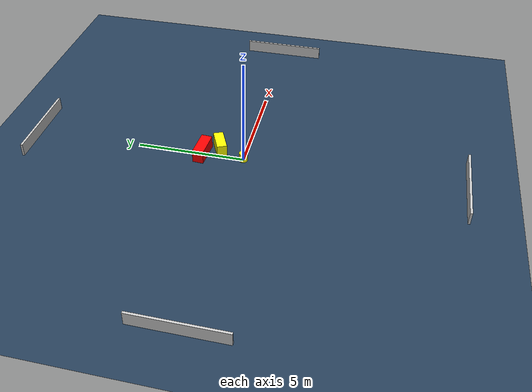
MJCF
<?xml version="1.0" ?>
<mujoco model="generated_environment">
  <option timestep="0.01" integrator="RK4" cone="elliptic"/>
  <default>
    <geom density="1"/>
  </default>
  <asset>
    <texture builtin="gradient" height="3072" name="skybox" rgb1="0.3 0.5 0.7" rgb2="0 0 0" type="skybox" width="512"/>
    <texture builtin="checker" height="300" name="groundplane" rgb1="0.2 0.3 0.4" rgb2="0.1 0.2 0.3" type="2d" width="300"/>
    <material name="groundplane" reflectance="0.2" texrepeat="5 5" texture="groundplane"/>
  </asset>
  <worldbody>
    <light dir="0 0 -1" directional="true" pos="0 0 1.5"/>
    <geom condim="3" friction="0.5 0.005 0.001" material="groundplane" name="floor" pos="0 0 0" size="0 0 0.05" type="plane"/>
    <body name="walls">
      <geom name="wall_1" condim="4" pos="-10.0 0.0 0.3" rgba="0.800000011920929 0.800000011920929 0.800000011920929 1.0" size="0.05 2.0 0.3" type="box"/>
      <geom name="wall_2" condim="4" pos="10.0 0.0 0.3" rgba="0.800000011920929 0.800000011920929 0.800000011920929 1.0" size="0.05 2.0 0.3" type="box"/>
      <geom name="wall_3" condim="4" pos="0.0 -10.0 0.3" rgba="0.800000011920929 0.800000011920929 0.800000011920929 1.0" size="2.0 0.05 0.3" type="box"/>
      <geom name="wall_4" condim="4" pos="0.0 10.0 0.3" rgba="0.800000011920929 0.800000011920929 0.800000011920929 1.0" size="2.0 0.05 0.3" type="box"/>
    </body>
    <body name="robot">
      <joint name="joint_x" type="slide" pos="0 0 0" axis="1 0 0"/>
      <joint name="joint_y" type="slide" pos="0 0 0" axis="0 1 0"/>
      <geom name="robot" type="cylinder" pos="0.0 0.0 0.2" size="0.2 0.2 0.0" mass="5.0" friction="1.0 0.005 0.0001" condim="4" rgba="1.0 1.0 0.0 1.0"/>
    </body>
    <body name="obstacle_1_movable">
      <geom name="obstacle_1_movable" condim="4" pos="0.5089318421892601 1.2369816955325932 0.3" euler="0 0 24.198325606263765" friction="0.0 0.005 0.001" rgba="1.0 1.0 0.0 1.0" size="0.5521662830830514 0.22911708118587548 0.3" type="box" mass="0.1"/>
      <joint type="free"/>
    </body>
    <body name="obstacle_2_static">
      <geom name="obstacle_2_static" condim="4" pos="0.0015109841640328673 1.946830491129932 0.3" euler="0 0 356.0954650833656" friction="0.0 0.005 0.001" rgba="1.0 0.0 0.0 1.0" size="0.6566687277957002 0.25364889370513005 0.3" type="box"/>
    </body>
  </worldbody>
  <actuator>
    <motor name="actuator_x" joint="joint_x" gear="1" ctrlrange="-1 1"/>
    <motor name="actuator_y" joint="joint_y" gear="1" ctrlrange="-1 1"/>
  </actuator>
</mujoco>
